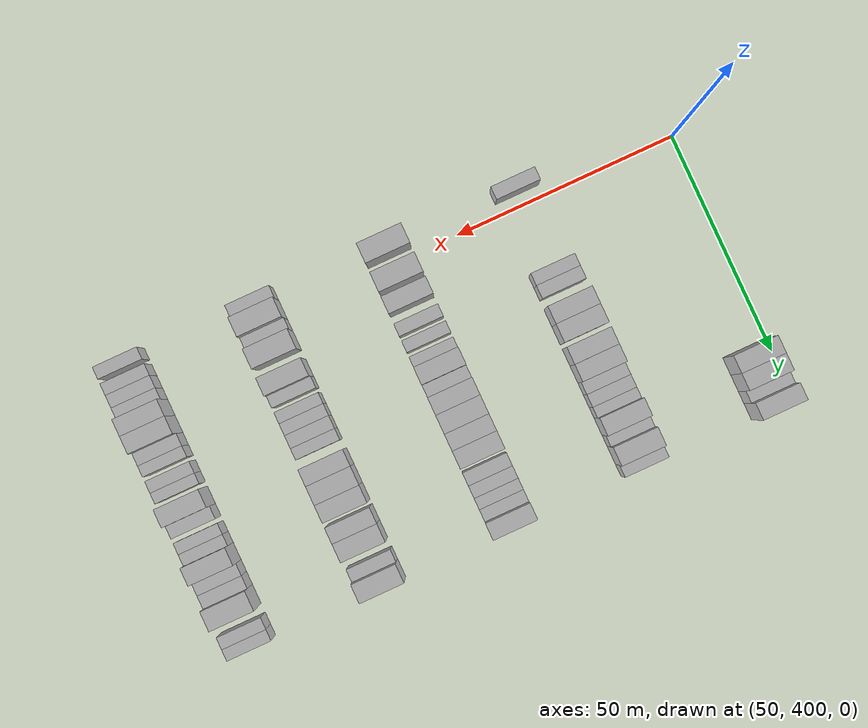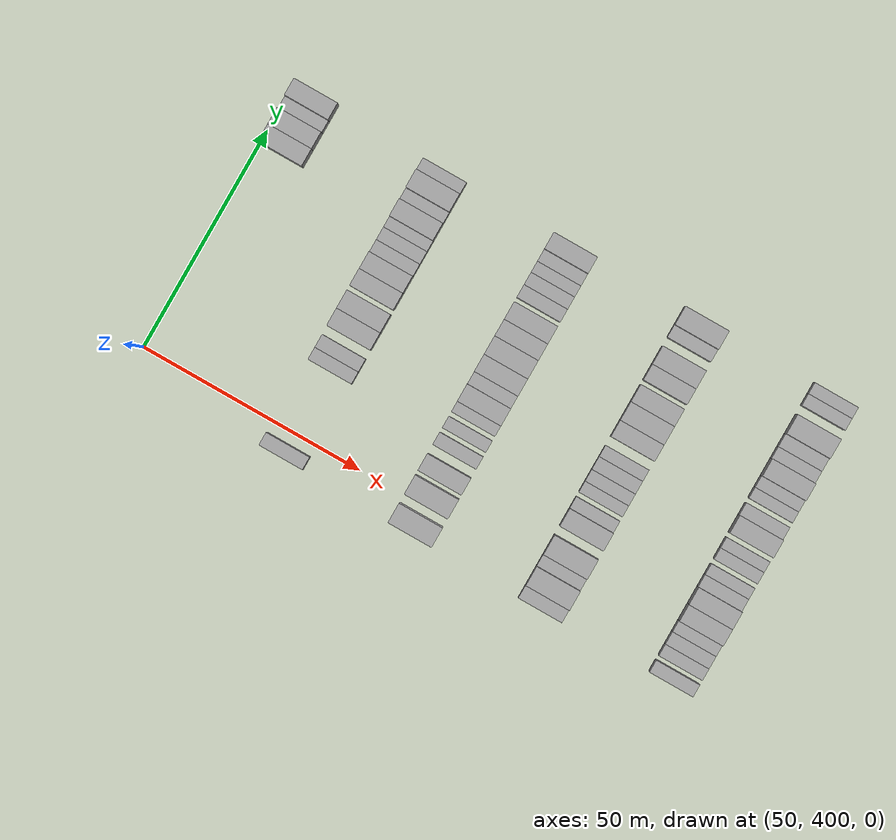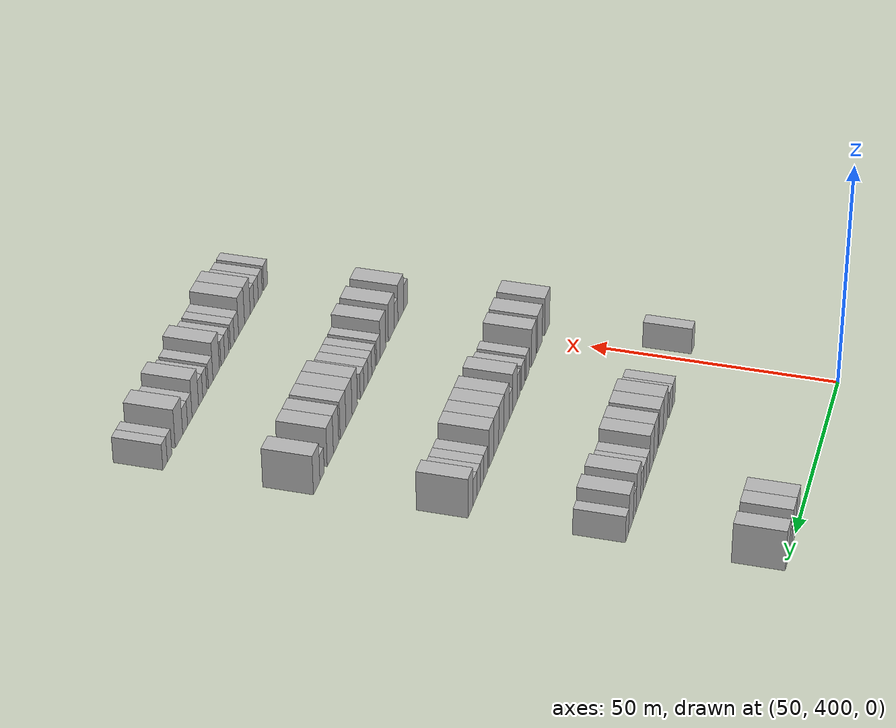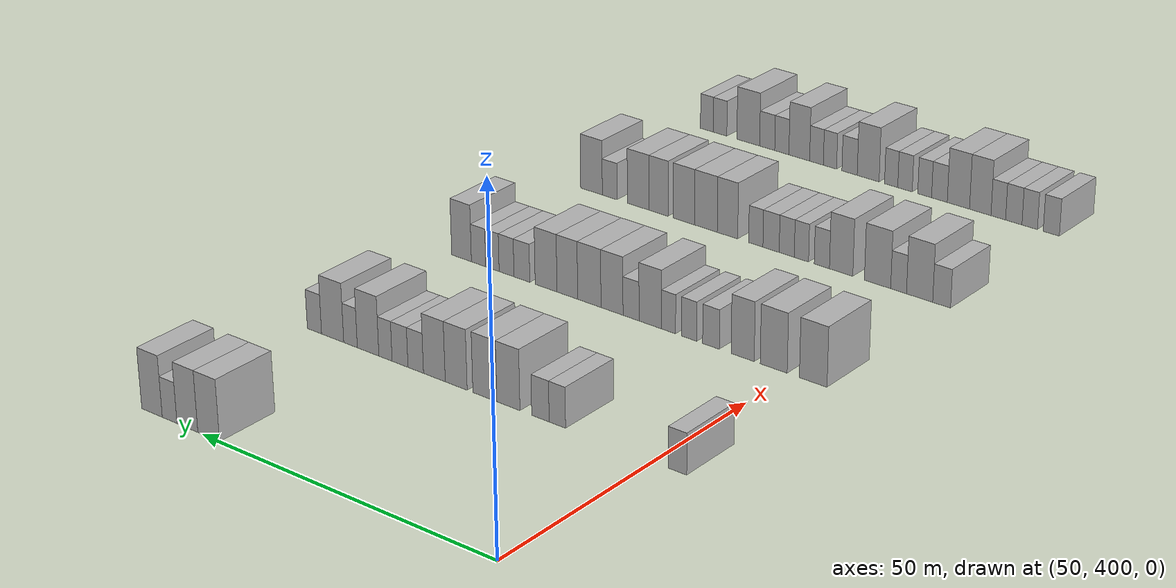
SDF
<sdf version="1.6">
 <world name="default">
  <model name="building_464">
   <static>1</static>
   <pose>55.0000 448.9267 0 0.000000 0.000000 0.000000</pose>
   <link name="link">
    <pose>0 0 4.50 0 0 0</pose>
    <collision name="collision"><geometry><box><size>10.0000 3.9750 9.0000</size></box></geometry></collision>
    <visual name="visual">
     <cast_shadows>0</cast_shadows>
     <geometry><box><size>10.0000 3.9750 9.0000</size></box></geometry>
     <material>
      <script>
       <uri>model://HANNAS_wall/materials/scripts</uri>
       <uri>model://HANNAS_wall/materials/textures</uri>
       <name>vrc/HANNAS_wall</name>
      </script>
     </material>
    </visual>
   </link>
  </model>
  <model name="building_465">
   <static>1</static>
   <pose>55.0000 452.8428 0 0.000000 0.000000 0.000000</pose>
   <link name="link">
    <pose>0 0 4.50 0 0 0</pose>
    <collision name="collision"><geometry><box><size>10.0000 3.8572 9.0000</size></box></geometry></collision>
    <visual name="visual">
     <cast_shadows>0</cast_shadows>
     <geometry><box><size>10.0000 3.8572 9.0000</size></box></geometry>
     <material>
      <script>
       <uri>model://HANNAS_wall/materials/scripts</uri>
       <uri>model://HANNAS_wall/materials/textures</uri>
       <name>vrc/HANNAS_wall</name>
      </script>
     </material>
    </visual>
   </link>
  </model>
  <model name="building_466">
   <static>1</static>
   <pose>55.0000 456.1457 0 0.000000 0.000000 0.000000</pose>
   <link name="link">
    <pose>0 0 3.00 0 0 0</pose>
    <collision name="collision"><geometry><box><size>10.0000 2.7486 6.0000</size></box></geometry></collision>
    <visual name="visual">
     <cast_shadows>0</cast_shadows>
     <geometry><box><size>10.0000 2.7486 6.0000</size></box></geometry>
     <material>
      <script>
       <uri>model://HANNAS_wall/materials/scripts</uri>
       <uri>model://HANNAS_wall/materials/textures</uri>
       <name>vrc/HANNAS_wall</name>
      </script>
     </material>
    </visual>
   </link>
  </model>
  <model name="building_467">
   <static>1</static>
   <pose>55.0000 459.4512 0 0.000000 0.000000 0.000000</pose>
   <link name="link">
    <pose>0 0 4.50 0 0 0</pose>
    <collision name="collision"><geometry><box><size>10.0000 3.8623 9.0000</size></box></geometry></collision>
    <visual name="visual">
     <cast_shadows>0</cast_shadows>
     <geometry><box><size>10.0000 3.8623 9.0000</size></box></geometry>
     <material>
      <script>
       <uri>model://HANNAS_wall/materials/scripts</uri>
       <uri>model://HANNAS_wall/materials/textures</uri>
       <name>vrc/HANNAS_wall</name>
      </script>
     </material>
    </visual>
   </link>
  </model>
  <model name="building_663">
   <static>1</static>
   <pose>85.0000 396.0462 0 0.000000 0.000000 0.000000</pose>
   <link name="link">
    <pose>0 0 3.00 0 0 0</pose>
    <collision name="collision"><geometry><box><size>10.0000 2.9121 6.0000</size></box></geometry></collision>
    <visual name="visual">
     <cast_shadows>0</cast_shadows>
     <geometry><box><size>10.0000 2.9121 6.0000</size></box></geometry>
     <material>
      <script>
       <uri>model://HANNAS_wall/materials/scripts</uri>
       <uri>model://HANNAS_wall/materials/textures</uri>
       <name>vrc/HANNAS_wall</name>
      </script>
     </material>
    </visual>
   </link>
  </model>
  <model name="building_664">
   <static>1</static>
   <pose>85.0000 415.6444 0 0.000000 0.000000 0.000000</pose>
   <link name="link">
    <pose>0 0 3.00 0 0 0</pose>
    <collision name="collision"><geometry><box><size>10.0000 2.7614 6.0000</size></box></geometry></collision>
    <visual name="visual">
     <cast_shadows>0</cast_shadows>
     <geometry><box><size>10.0000 2.7614 6.0000</size></box></geometry>
     <material>
      <script>
       <uri>model://HANNAS_wall/materials/scripts</uri>
       <uri>model://HANNAS_wall/materials/textures</uri>
       <name>vrc/HANNAS_wall</name>
      </script>
     </material>
    </visual>
   </link>
  </model>
  <model name="building_665">
   <static>1</static>
   <pose>85.0000 418.5051 0 0.000000 0.000000 0.000000</pose>
   <link name="link">
    <pose>0 0 3.00 0 0 0</pose>
    <collision name="collision"><geometry><box><size>10.0000 2.9600 6.0000</size></box></geometry></collision>
    <visual name="visual">
     <cast_shadows>0</cast_shadows>
     <geometry><box><size>10.0000 2.9600 6.0000</size></box></geometry>
     <material>
      <script>
       <uri>model://HANNAS_wall/materials/scripts</uri>
       <uri>model://HANNAS_wall/materials/textures</uri>
       <name>vrc/HANNAS_wall</name>
      </script>
     </material>
    </visual>
   </link>
  </model>
  <model name="building_666">
   <static>1</static>
   <pose>85.0000 423.9776 0 0.000000 0.000000 0.000000</pose>
   <link name="link">
    <pose>0 0 4.50 0 0 0</pose>
    <collision name="collision"><geometry><box><size>10.0000 3.9851 9.0000</size></box></geometry></collision>
    <visual name="visual">
     <cast_shadows>0</cast_shadows>
     <geometry><box><size>10.0000 3.9851 9.0000</size></box></geometry>
     <material>
      <script>
       <uri>model://HANNAS_wall/materials/scripts</uri>
       <uri>model://HANNAS_wall/materials/textures</uri>
       <name>vrc/HANNAS_wall</name>
      </script>
     </material>
    </visual>
   </link>
  </model>
  <model name="building_667">
   <static>1</static>
   <pose>85.0000 428.0587 0 0.000000 0.000000 0.000000</pose>
   <link name="link">
    <pose>0 0 4.50 0 0 0</pose>
    <collision name="collision"><geometry><box><size>10.0000 4.1770 9.0000</size></box></geometry></collision>
    <visual name="visual">
     <cast_shadows>0</cast_shadows>
     <geometry><box><size>10.0000 4.1770 9.0000</size></box></geometry>
     <material>
      <script>
       <uri>model://HANNAS_wall/materials/scripts</uri>
       <uri>model://HANNAS_wall/materials/textures</uri>
       <name>vrc/HANNAS_wall</name>
      </script>
     </material>
    </visual>
   </link>
  </model>
  <model name="building_668">
   <static>1</static>
   <pose>85.0000 433.0888 0 0.000000 0.000000 0.000000</pose>
   <link name="link">
    <pose>0 0 4.50 0 0 0</pose>
    <collision name="collision"><geometry><box><size>10.0000 3.8833 9.0000</size></box></geometry></collision>
    <visual name="visual">
     <cast_shadows>0</cast_shadows>
     <geometry><box><size>10.0000 3.8833 9.0000</size></box></geometry>
     <material>
      <script>
       <uri>model://HANNAS_wall/materials/scripts</uri>
       <uri>model://HANNAS_wall/materials/textures</uri>
       <name>vrc/HANNAS_wall</name>
      </script>
     </material>
    </visual>
   </link>
  </model>
  <model name="building_669">
   <static>1</static>
   <pose>85.0000 436.9780 0 0.000000 0.000000 0.000000</pose>
   <link name="link">
    <pose>0 0 4.50 0 0 0</pose>
    <collision name="collision"><geometry><box><size>10.0000 3.8949 9.0000</size></box></geometry></collision>
    <visual name="visual">
     <cast_shadows>0</cast_shadows>
     <geometry><box><size>10.0000 3.8949 9.0000</size></box></geometry>
     <material>
      <script>
       <uri>model://HANNAS_wall/materials/scripts</uri>
       <uri>model://HANNAS_wall/materials/textures</uri>
       <name>vrc/HANNAS_wall</name>
      </script>
     </material>
    </visual>
   </link>
  </model>
  <model name="building_670">
   <static>1</static>
   <pose>85.0000 440.3290 0 0.000000 0.000000 0.000000</pose>
   <link name="link">
    <pose>0 0 3.00 0 0 0</pose>
    <collision name="collision"><geometry><box><size>10.0000 2.8072 6.0000</size></box></geometry></collision>
    <visual name="visual">
     <cast_shadows>0</cast_shadows>
     <geometry><box><size>10.0000 2.8072 6.0000</size></box></geometry>
     <material>
      <script>
       <uri>model://HANNAS_wall/materials/scripts</uri>
       <uri>model://HANNAS_wall/materials/textures</uri>
       <name>vrc/HANNAS_wall</name>
      </script>
     </material>
    </visual>
   </link>
  </model>
  <model name="building_671">
   <static>1</static>
   <pose>85.0000 443.1769 0 0.000000 0.000000 0.000000</pose>
   <link name="link">
    <pose>0 0 3.00 0 0 0</pose>
    <collision name="collision"><geometry><box><size>10.0000 2.8884 6.0000</size></box></geometry></collision>
    <visual name="visual">
     <cast_shadows>0</cast_shadows>
     <geometry><box><size>10.0000 2.8884 6.0000</size></box></geometry>
     <material>
      <script>
       <uri>model://HANNAS_wall/materials/scripts</uri>
       <uri>model://HANNAS_wall/materials/textures</uri>
       <name>vrc/HANNAS_wall</name>
      </script>
     </material>
    </visual>
   </link>
  </model>
  <model name="building_672">
   <static>1</static>
   <pose>85.0000 445.8371 0 0.000000 0.000000 0.000000</pose>
   <link name="link">
    <pose>0 0 3.00 0 0 0</pose>
    <collision name="collision"><geometry><box><size>10.0000 2.4321 6.0000</size></box></geometry></collision>
    <visual name="visual">
     <cast_shadows>0</cast_shadows>
     <geometry><box><size>10.0000 2.4321 6.0000</size></box></geometry>
     <material>
      <script>
       <uri>model://HANNAS_wall/materials/scripts</uri>
       <uri>model://HANNAS_wall/materials/textures</uri>
       <name>vrc/HANNAS_wall</name>
      </script>
     </material>
    </visual>
   </link>
  </model>
  <model name="building_673">
   <static>1</static>
   <pose>85.0000 449.0518 0 0.000000 0.000000 0.000000</pose>
   <link name="link">
    <pose>0 0 4.50 0 0 0</pose>
    <collision name="collision"><geometry><box><size>10.0000 3.9973 9.0000</size></box></geometry></collision>
    <visual name="visual">
     <cast_shadows>0</cast_shadows>
     <geometry><box><size>10.0000 3.9973 9.0000</size></box></geometry>
     <material>
      <script>
       <uri>model://HANNAS_wall/materials/scripts</uri>
       <uri>model://HANNAS_wall/materials/textures</uri>
       <name>vrc/HANNAS_wall</name>
      </script>
     </material>
    </visual>
   </link>
  </model>
  <model name="building_674">
   <static>1</static>
   <pose>85.0000 452.3210 0 0.000000 0.000000 0.000000</pose>
   <link name="link">
    <pose>0 0 3.00 0 0 0</pose>
    <collision name="collision"><geometry><box><size>10.0000 2.5412 6.0000</size></box></geometry></collision>
    <visual name="visual">
     <cast_shadows>0</cast_shadows>
     <geometry><box><size>10.0000 2.5412 6.0000</size></box></geometry>
     <material>
      <script>
       <uri>model://HANNAS_wall/materials/scripts</uri>
       <uri>model://HANNAS_wall/materials/textures</uri>
       <name>vrc/HANNAS_wall</name>
      </script>
     </material>
    </visual>
   </link>
  </model>
  <model name="building_675">
   <static>1</static>
   <pose>85.0000 455.6850 0 0.000000 0.000000 0.000000</pose>
   <link name="link">
    <pose>0 0 4.50 0 0 0</pose>
    <collision name="collision"><geometry><box><size>10.0000 4.1868 9.0000</size></box></geometry></collision>
    <visual name="visual">
     <cast_shadows>0</cast_shadows>
     <geometry><box><size>10.0000 4.1868 9.0000</size></box></geometry>
     <material>
      <script>
       <uri>model://HANNAS_wall/materials/scripts</uri>
       <uri>model://HANNAS_wall/materials/textures</uri>
       <name>vrc/HANNAS_wall</name>
      </script>
     </material>
    </visual>
   </link>
  </model>
  <model name="building_676">
   <static>1</static>
   <pose>85.0000 459.1339 0 0.000000 0.000000 0.000000</pose>
   <link name="link">
    <pose>0 0 3.00 0 0 0</pose>
    <collision name="collision"><geometry><box><size>10.0000 2.7111 6.0000</size></box></geometry></collision>
    <visual name="visual">
     <cast_shadows>0</cast_shadows>
     <geometry><box><size>10.0000 2.7111 6.0000</size></box></geometry>
     <material>
      <script>
       <uri>model://HANNAS_wall/materials/scripts</uri>
       <uri>model://HANNAS_wall/materials/textures</uri>
       <name>vrc/HANNAS_wall</name>
      </script>
     </material>
    </visual>
   </link>
  </model>
  <model name="building_891">
   <static>1</static>
   <pose>115.0000 396.2798 0 0.000000 0.000000 0.000000</pose>
   <link name="link">
    <pose>0 0 4.50 0 0 0</pose>
    <collision name="collision"><geometry><box><size>10.0000 4.4932 9.0000</size></box></geometry></collision>
    <visual name="visual">
     <cast_shadows>0</cast_shadows>
     <geometry><box><size>10.0000 4.4932 9.0000</size></box></geometry>
     <material>
      <script>
       <uri>model://HANNAS_wall/materials/scripts</uri>
       <uri>model://HANNAS_wall/materials/textures</uri>
       <name>vrc/HANNAS_wall</name>
      </script>
     </material>
    </visual>
   </link>
  </model>
  <model name="building_892">
   <static>1</static>
   <pose>115.0000 402.7582 0 0.000000 0.000000 0.000000</pose>
   <link name="link">
    <pose>0 0 4.50 0 0 0</pose>
    <collision name="collision"><geometry><box><size>10.0000 4.4637 9.0000</size></box></geometry></collision>
    <visual name="visual">
     <cast_shadows>0</cast_shadows>
     <geometry><box><size>10.0000 4.4637 9.0000</size></box></geometry>
     <material>
      <script>
       <uri>model://HANNAS_wall/materials/scripts</uri>
       <uri>model://HANNAS_wall/materials/textures</uri>
       <name>vrc/HANNAS_wall</name>
      </script>
     </material>
    </visual>
   </link>
  </model>
  <model name="building_893">
   <static>1</static>
   <pose>115.0000 407.9287 0 0.000000 0.000000 0.000000</pose>
   <link name="link">
    <pose>0 0 4.50 0 0 0</pose>
    <collision name="collision"><geometry><box><size>10.0000 3.8773 9.0000</size></box></geometry></collision>
    <visual name="visual">
     <cast_shadows>0</cast_shadows>
     <geometry><box><size>10.0000 3.8773 9.0000</size></box></geometry>
     <material>
      <script>
       <uri>model://HANNAS_wall/materials/scripts</uri>
       <uri>model://HANNAS_wall/materials/textures</uri>
       <name>vrc/HANNAS_wall</name>
      </script>
     </material>
    </visual>
   </link>
  </model>
  <model name="building_894">
   <static>1</static>
   <pose>115.0000 413.2914 0 0.000000 0.000000 0.000000</pose>
   <link name="link">
    <pose>0 0 3.00 0 0 0</pose>
    <collision name="collision"><geometry><box><size>10.0000 2.8482 6.0000</size></box></geometry></collision>
    <visual name="visual">
     <cast_shadows>0</cast_shadows>
     <geometry><box><size>10.0000 2.8482 6.0000</size></box></geometry>
     <material>
      <script>
       <uri>model://HANNAS_wall/materials/scripts</uri>
       <uri>model://HANNAS_wall/materials/textures</uri>
       <name>vrc/HANNAS_wall</name>
      </script>
     </material>
    </visual>
   </link>
  </model>
  <model name="building_895">
   <static>1</static>
   <pose>115.0000 417.0462 0 0.000000 0.000000 0.000000</pose>
   <link name="link">
    <pose>0 0 3.00 0 0 0</pose>
    <collision name="collision"><geometry><box><size>10.0000 2.6614 6.0000</size></box></geometry></collision>
    <visual name="visual">
     <cast_shadows>0</cast_shadows>
     <geometry><box><size>10.0000 2.6614 6.0000</size></box></geometry>
     <material>
      <script>
       <uri>model://HANNAS_wall/materials/scripts</uri>
       <uri>model://HANNAS_wall/materials/textures</uri>
       <name>vrc/HANNAS_wall</name>
      </script>
     </material>
    </visual>
   </link>
  </model>
  <model name="building_896">
   <static>1</static>
   <pose>115.0000 420.5962 0 0.000000 0.000000 0.000000</pose>
   <link name="link">
    <pose>0 0 3.00 0 0 0</pose>
    <collision name="collision"><geometry><box><size>10.0000 2.4386 6.0000</size></box></geometry></collision>
    <visual name="visual">
     <cast_shadows>0</cast_shadows>
     <geometry><box><size>10.0000 2.4386 6.0000</size></box></geometry>
     <material>
      <script>
       <uri>model://HANNAS_wall/materials/scripts</uri>
       <uri>model://HANNAS_wall/materials/textures</uri>
       <name>vrc/HANNAS_wall</name>
      </script>
     </material>
    </visual>
   </link>
  </model>
  <model name="building_897">
   <static>1</static>
   <pose>115.0000 423.7992 0 0.000000 0.000000 0.000000</pose>
   <link name="link">
    <pose>0 0 4.50 0 0 0</pose>
    <collision name="collision"><geometry><box><size>10.0000 3.9674 9.0000</size></box></geometry></collision>
    <visual name="visual">
     <cast_shadows>0</cast_shadows>
     <geometry><box><size>10.0000 3.9674 9.0000</size></box></geometry>
     <material>
      <script>
       <uri>model://HANNAS_wall/materials/scripts</uri>
       <uri>model://HANNAS_wall/materials/textures</uri>
       <name>vrc/HANNAS_wall</name>
      </script>
     </material>
    </visual>
   </link>
  </model>
  <model name="building_898">
   <static>1</static>
   <pose>115.0000 427.1985 0 0.000000 0.000000 0.000000</pose>
   <link name="link">
    <pose>0 0 3.00 0 0 0</pose>
    <collision name="collision"><geometry><box><size>10.0000 2.8313 6.0000</size></box></geometry></collision>
    <visual name="visual">
     <cast_shadows>0</cast_shadows>
     <geometry><box><size>10.0000 2.8313 6.0000</size></box></geometry>
     <material>
      <script>
       <uri>model://HANNAS_wall/materials/scripts</uri>
       <uri>model://HANNAS_wall/materials/textures</uri>
       <name>vrc/HANNAS_wall</name>
      </script>
     </material>
    </visual>
   </link>
  </model>
  <model name="building_899">
   <static>1</static>
   <pose>115.0000 430.5866 0 0.000000 0.000000 0.000000</pose>
   <link name="link">
    <pose>0 0 4.50 0 0 0</pose>
    <collision name="collision"><geometry><box><size>10.0000 3.9449 9.0000</size></box></geometry></collision>
    <visual name="visual">
     <cast_shadows>0</cast_shadows>
     <geometry><box><size>10.0000 3.9449 9.0000</size></box></geometry>
     <material>
      <script>
       <uri>model://HANNAS_wall/materials/scripts</uri>
       <uri>model://HANNAS_wall/materials/textures</uri>
       <name>vrc/HANNAS_wall</name>
      </script>
     </material>
    </visual>
   </link>
  </model>
  <model name="building_900">
   <static>1</static>
   <pose>115.0000 434.6701 0 0.000000 0.000000 0.000000</pose>
   <link name="link">
    <pose>0 0 4.50 0 0 0</pose>
    <collision name="collision"><geometry><box><size>10.0000 4.2222 9.0000</size></box></geometry></collision>
    <visual name="visual">
     <cast_shadows>0</cast_shadows>
     <geometry><box><size>10.0000 4.2222 9.0000</size></box></geometry>
     <material>
      <script>
       <uri>model://HANNAS_wall/materials/scripts</uri>
       <uri>model://HANNAS_wall/materials/textures</uri>
       <name>vrc/HANNAS_wall</name>
      </script>
     </material>
    </visual>
   </link>
  </model>
  <model name="building_901">
   <static>1</static>
   <pose>115.0000 438.6749 0 0.000000 0.000000 0.000000</pose>
   <link name="link">
    <pose>0 0 4.50 0 0 0</pose>
    <collision name="collision"><geometry><box><size>10.0000 3.7874 9.0000</size></box></geometry></collision>
    <visual name="visual">
     <cast_shadows>0</cast_shadows>
     <geometry><box><size>10.0000 3.7874 9.0000</size></box></geometry>
     <material>
      <script>
       <uri>model://HANNAS_wall/materials/scripts</uri>
       <uri>model://HANNAS_wall/materials/textures</uri>
       <name>vrc/HANNAS_wall</name>
      </script>
     </material>
    </visual>
   </link>
  </model>
  <model name="building_902">
   <static>1</static>
   <pose>115.0000 442.5898 0 0.000000 0.000000 0.000000</pose>
   <link name="link">
    <pose>0 0 4.50 0 0 0</pose>
    <collision name="collision"><geometry><box><size>10.0000 4.0423 9.0000</size></box></geometry></collision>
    <visual name="visual">
     <cast_shadows>0</cast_shadows>
     <geometry><box><size>10.0000 4.0423 9.0000</size></box></geometry>
     <material>
      <script>
       <uri>model://HANNAS_wall/materials/scripts</uri>
       <uri>model://HANNAS_wall/materials/textures</uri>
       <name>vrc/HANNAS_wall</name>
      </script>
     </material>
    </visual>
   </link>
  </model>
  <model name="building_903">
   <static>1</static>
   <pose>115.0000 447.0925 0 0.000000 0.000000 0.000000</pose>
   <link name="link">
    <pose>0 0 3.00 0 0 0</pose>
    <collision name="collision"><geometry><box><size>10.0000 2.9630 6.0000</size></box></geometry></collision>
    <visual name="visual">
     <cast_shadows>0</cast_shadows>
     <geometry><box><size>10.0000 2.9630 6.0000</size></box></geometry>
     <material>
      <script>
       <uri>model://HANNAS_wall/materials/scripts</uri>
       <uri>model://HANNAS_wall/materials/textures</uri>
       <name>vrc/HANNAS_wall</name>
      </script>
     </material>
    </visual>
   </link>
  </model>
  <model name="building_904">
   <static>1</static>
   <pose>115.0000 449.9785 0 0.000000 0.000000 0.000000</pose>
   <link name="link">
    <pose>0 0 3.00 0 0 0</pose>
    <collision name="collision"><geometry><box><size>10.0000 2.8090 6.0000</size></box></geometry></collision>
    <visual name="visual">
     <cast_shadows>0</cast_shadows>
     <geometry><box><size>10.0000 2.8090 6.0000</size></box></geometry>
     <material>
      <script>
       <uri>model://HANNAS_wall/materials/scripts</uri>
       <uri>model://HANNAS_wall/materials/textures</uri>
       <name>vrc/HANNAS_wall</name>
      </script>
     </material>
    </visual>
   </link>
  </model>
  <model name="building_905">
   <static>1</static>
   <pose>115.0000 452.6579 0 0.000000 0.000000 0.000000</pose>
   <link name="link">
    <pose>0 0 3.00 0 0 0</pose>
    <collision name="collision"><geometry><box><size>10.0000 2.5497 6.0000</size></box></geometry></collision>
    <visual name="visual">
     <cast_shadows>0</cast_shadows>
     <geometry><box><size>10.0000 2.5497 6.0000</size></box></geometry>
     <material>
      <script>
       <uri>model://HANNAS_wall/materials/scripts</uri>
       <uri>model://HANNAS_wall/materials/textures</uri>
       <name>vrc/HANNAS_wall</name>
      </script>
     </material>
    </visual>
   </link>
  </model>
  <model name="building_906">
   <static>1</static>
   <pose>115.0000 455.3035 0 0.000000 0.000000 0.000000</pose>
   <link name="link">
    <pose>0 0 3.00 0 0 0</pose>
    <collision name="collision"><geometry><box><size>10.0000 2.7417 6.0000</size></box></geometry></collision>
    <visual name="visual">
     <cast_shadows>0</cast_shadows>
     <geometry><box><size>10.0000 2.7417 6.0000</size></box></geometry>
     <material>
      <script>
       <uri>model://HANNAS_wall/materials/scripts</uri>
       <uri>model://HANNAS_wall/materials/textures</uri>
       <name>vrc/HANNAS_wall</name>
      </script>
     </material>
    </visual>
   </link>
  </model>
  <model name="building_907">
   <static>1</static>
   <pose>115.0000 458.5735 0 0.000000 0.000000 0.000000</pose>
   <link name="link">
    <pose>0 0 4.50 0 0 0</pose>
    <collision name="collision"><geometry><box><size>10.0000 3.7983 9.0000</size></box></geometry></collision>
    <visual name="visual">
     <cast_shadows>0</cast_shadows>
     <geometry><box><size>10.0000 3.7983 9.0000</size></box></geometry>
     <material>
      <script>
       <uri>model://HANNAS_wall/materials/scripts</uri>
       <uri>model://HANNAS_wall/materials/textures</uri>
       <name>vrc/HANNAS_wall</name>
      </script>
     </material>
    </visual>
   </link>
  </model>
  <model name="building_1117">
   <static>1</static>
   <pose>145.0000 395.2943 0 0.000000 0.000000 0.000000</pose>
   <link name="link">
    <pose>0 0 3.00 0 0 0</pose>
    <collision name="collision"><geometry><box><size>10.0000 2.9698 6.0000</size></box></geometry></collision>
    <visual name="visual">
     <cast_shadows>0</cast_shadows>
     <geometry><box><size>10.0000 2.9698 6.0000</size></box></geometry>
     <material>
      <script>
       <uri>model://HANNAS_wall/materials/scripts</uri>
       <uri>model://HANNAS_wall/materials/textures</uri>
       <name>vrc/HANNAS_wall</name>
      </script>
     </material>
    </visual>
   </link>
  </model>
  <model name="building_1118">
   <static>1</static>
   <pose>145.0000 398.9820 0 0.000000 0.000000 0.000000</pose>
   <link name="link">
    <pose>0 0 4.50 0 0 0</pose>
    <collision name="collision"><geometry><box><size>10.0000 4.4057 9.0000</size></box></geometry></collision>
    <visual name="visual">
     <cast_shadows>0</cast_shadows>
     <geometry><box><size>10.0000 4.4057 9.0000</size></box></geometry>
     <material>
      <script>
       <uri>model://HANNAS_wall/materials/scripts</uri>
       <uri>model://HANNAS_wall/materials/textures</uri>
       <name>vrc/HANNAS_wall</name>
      </script>
     </material>
    </visual>
   </link>
  </model>
  <model name="building_1119">
   <static>1</static>
   <pose>145.0000 402.5238 0 0.000000 0.000000 0.000000</pose>
   <link name="link">
    <pose>0 0 3.00 0 0 0</pose>
    <collision name="collision"><geometry><box><size>10.0000 2.6779 6.0000</size></box></geometry></collision>
    <visual name="visual">
     <cast_shadows>0</cast_shadows>
     <geometry><box><size>10.0000 2.6779 6.0000</size></box></geometry>
     <material>
      <script>
       <uri>model://HANNAS_wall/materials/scripts</uri>
       <uri>model://HANNAS_wall/materials/textures</uri>
       <name>vrc/HANNAS_wall</name>
      </script>
     </material>
    </visual>
   </link>
  </model>
  <model name="building_1120">
   <static>1</static>
   <pose>145.0000 406.1125 0 0.000000 0.000000 0.000000</pose>
   <link name="link">
    <pose>0 0 4.50 0 0 0</pose>
    <collision name="collision"><geometry><box><size>10.0000 4.4994 9.0000</size></box></geometry></collision>
    <visual name="visual">
     <cast_shadows>0</cast_shadows>
     <geometry><box><size>10.0000 4.4994 9.0000</size></box></geometry>
     <material>
      <script>
       <uri>model://HANNAS_wall/materials/scripts</uri>
       <uri>model://HANNAS_wall/materials/textures</uri>
       <name>vrc/HANNAS_wall</name>
      </script>
     </material>
    </visual>
   </link>
  </model>
  <model name="building_1121">
   <static>1</static>
   <pose>145.0000 412.3999 0 0.000000 0.000000 0.000000</pose>
   <link name="link">
    <pose>0 0 4.50 0 0 0</pose>
    <collision name="collision"><geometry><box><size>10.0000 4.0754 9.0000</size></box></geometry></collision>
    <visual name="visual">
     <cast_shadows>0</cast_shadows>
     <geometry><box><size>10.0000 4.0754 9.0000</size></box></geometry>
     <material>
      <script>
       <uri>model://HANNAS_wall/materials/scripts</uri>
       <uri>model://HANNAS_wall/materials/textures</uri>
       <name>vrc/HANNAS_wall</name>
      </script>
     </material>
    </visual>
   </link>
  </model>
  <model name="building_1122">
   <static>1</static>
   <pose>145.0000 415.7725 0 0.000000 0.000000 0.000000</pose>
   <link name="link">
    <pose>0 0 3.00 0 0 0</pose>
    <collision name="collision"><geometry><box><size>10.0000 2.6699 6.0000</size></box></geometry></collision>
    <visual name="visual">
     <cast_shadows>0</cast_shadows>
     <geometry><box><size>10.0000 2.6699 6.0000</size></box></geometry>
     <material>
      <script>
       <uri>model://HANNAS_wall/materials/scripts</uri>
       <uri>model://HANNAS_wall/materials/textures</uri>
       <name>vrc/HANNAS_wall</name>
      </script>
     </material>
    </visual>
   </link>
  </model>
  <model name="building_1123">
   <static>1</static>
   <pose>145.0000 419.3761 0 0.000000 0.000000 0.000000</pose>
   <link name="link">
    <pose>0 0 3.00 0 0 0</pose>
    <collision name="collision"><geometry><box><size>10.0000 2.5372 6.0000</size></box></geometry></collision>
    <visual name="visual">
     <cast_shadows>0</cast_shadows>
     <geometry><box><size>10.0000 2.5372 6.0000</size></box></geometry>
     <material>
      <script>
       <uri>model://HANNAS_wall/materials/scripts</uri>
       <uri>model://HANNAS_wall/materials/textures</uri>
       <name>vrc/HANNAS_wall</name>
      </script>
     </material>
    </visual>
   </link>
  </model>
  <model name="building_1124">
   <static>1</static>
   <pose>145.0000 421.9921 0 0.000000 0.000000 0.000000</pose>
   <link name="link">
    <pose>0 0 3.00 0 0 0</pose>
    <collision name="collision"><geometry><box><size>10.0000 2.6948 6.0000</size></box></geometry></collision>
    <visual name="visual">
     <cast_shadows>0</cast_shadows>
     <geometry><box><size>10.0000 2.6948 6.0000</size></box></geometry>
     <material>
      <script>
       <uri>model://HANNAS_wall/materials/scripts</uri>
       <uri>model://HANNAS_wall/materials/textures</uri>
       <name>vrc/HANNAS_wall</name>
      </script>
     </material>
    </visual>
   </link>
  </model>
  <model name="building_1125">
   <static>1</static>
   <pose>145.0000 424.8065 0 0.000000 0.000000 0.000000</pose>
   <link name="link">
    <pose>0 0 3.00 0 0 0</pose>
    <collision name="collision"><geometry><box><size>10.0000 2.9340 6.0000</size></box></geometry></collision>
    <visual name="visual">
     <cast_shadows>0</cast_shadows>
     <geometry><box><size>10.0000 2.9340 6.0000</size></box></geometry>
     <material>
      <script>
       <uri>model://HANNAS_wall/materials/scripts</uri>
       <uri>model://HANNAS_wall/materials/textures</uri>
       <name>vrc/HANNAS_wall</name>
      </script>
     </material>
    </visual>
   </link>
  </model>
  <model name="building_1126">
   <static>1</static>
   <pose>145.0000 427.5677 0 0.000000 0.000000 0.000000</pose>
   <link name="link">
    <pose>0 0 3.00 0 0 0</pose>
    <collision name="collision"><geometry><box><size>10.0000 2.5884 6.0000</size></box></geometry></collision>
    <visual name="visual">
     <cast_shadows>0</cast_shadows>
     <geometry><box><size>10.0000 2.5884 6.0000</size></box></geometry>
     <material>
      <script>
       <uri>model://HANNAS_wall/materials/scripts</uri>
       <uri>model://HANNAS_wall/materials/textures</uri>
       <name>vrc/HANNAS_wall</name>
      </script>
     </material>
    </visual>
   </link>
  </model>
  <model name="building_1127">
   <static>1</static>
   <pose>145.0000 432.7432 0 0.000000 0.000000 0.000000</pose>
   <link name="link">
    <pose>0 0 4.50 0 0 0</pose>
    <collision name="collision"><geometry><box><size>10.0000 3.7625 9.0000</size></box></geometry></collision>
    <visual name="visual">
     <cast_shadows>0</cast_shadows>
     <geometry><box><size>10.0000 3.7625 9.0000</size></box></geometry>
     <material>
      <script>
       <uri>model://HANNAS_wall/materials/scripts</uri>
       <uri>model://HANNAS_wall/materials/textures</uri>
       <name>vrc/HANNAS_wall</name>
      </script>
     </material>
    </visual>
   </link>
  </model>
  <model name="building_1128">
   <static>1</static>
   <pose>145.0000 436.7413 0 0.000000 0.000000 0.000000</pose>
   <link name="link">
    <pose>0 0 4.50 0 0 0</pose>
    <collision name="collision"><geometry><box><size>10.0000 4.2338 9.0000</size></box></geometry></collision>
    <visual name="visual">
     <cast_shadows>0</cast_shadows>
     <geometry><box><size>10.0000 4.2338 9.0000</size></box></geometry>
     <material>
      <script>
       <uri>model://HANNAS_wall/materials/scripts</uri>
       <uri>model://HANNAS_wall/materials/textures</uri>
       <name>vrc/HANNAS_wall</name>
      </script>
     </material>
    </visual>
   </link>
  </model>
  <model name="building_1129">
   <static>1</static>
   <pose>145.0000 440.8427 0 0.000000 0.000000 0.000000</pose>
   <link name="link">
    <pose>0 0 4.50 0 0 0</pose>
    <collision name="collision"><geometry><box><size>10.0000 3.9689 9.0000</size></box></geometry></collision>
    <visual name="visual">
     <cast_shadows>0</cast_shadows>
     <geometry><box><size>10.0000 3.9689 9.0000</size></box></geometry>
     <material>
      <script>
       <uri>model://HANNAS_wall/materials/scripts</uri>
       <uri>model://HANNAS_wall/materials/textures</uri>
       <name>vrc/HANNAS_wall</name>
      </script>
     </material>
    </visual>
   </link>
  </model>
  <model name="building_1130">
   <static>1</static>
   <pose>145.0000 445.6446 0 0.000000 0.000000 0.000000</pose>
   <link name="link">
    <pose>0 0 4.50 0 0 0</pose>
    <collision name="collision"><geometry><box><size>10.0000 3.6349 9.0000</size></box></geometry></collision>
    <visual name="visual">
     <cast_shadows>0</cast_shadows>
     <geometry><box><size>10.0000 3.6349 9.0000</size></box></geometry>
     <material>
      <script>
       <uri>model://HANNAS_wall/materials/scripts</uri>
       <uri>model://HANNAS_wall/materials/textures</uri>
       <name>vrc/HANNAS_wall</name>
      </script>
     </material>
    </visual>
   </link>
  </model>
  <model name="building_1131">
   <static>1</static>
   <pose>145.0000 449.5389 0 0.000000 0.000000 0.000000</pose>
   <link name="link">
    <pose>0 0 4.50 0 0 0</pose>
    <collision name="collision"><geometry><box><size>10.0000 4.1537 9.0000</size></box></geometry></collision>
    <visual name="visual">
     <cast_shadows>0</cast_shadows>
     <geometry><box><size>10.0000 4.1537 9.0000</size></box></geometry>
     <material>
      <script>
       <uri>model://HANNAS_wall/materials/scripts</uri>
       <uri>model://HANNAS_wall/materials/textures</uri>
       <name>vrc/HANNAS_wall</name>
      </script>
     </material>
    </visual>
   </link>
  </model>
  <model name="building_1132">
   <static>1</static>
   <pose>145.0000 455.0439 0 0.000000 0.000000 0.000000</pose>
   <link name="link">
    <pose>0 0 3.00 0 0 0</pose>
    <collision name="collision"><geometry><box><size>10.0000 2.8564 6.0000</size></box></geometry></collision>
    <visual name="visual">
     <cast_shadows>0</cast_shadows>
     <geometry><box><size>10.0000 2.8564 6.0000</size></box></geometry>
     <material>
      <script>
       <uri>model://HANNAS_wall/materials/scripts</uri>
       <uri>model://HANNAS_wall/materials/textures</uri>
       <name>vrc/HANNAS_wall</name>
      </script>
     </material>
    </visual>
   </link>
  </model>
  <model name="building_1133">
   <static>1</static>
   <pose>145.0000 458.5966 0 0.000000 0.000000 0.000000</pose>
   <link name="link">
    <pose>0 0 4.50 0 0 0</pose>
    <collision name="collision"><geometry><box><size>10.0000 4.2491 9.0000</size></box></geometry></collision>
    <visual name="visual">
     <cast_shadows>0</cast_shadows>
     <geometry><box><size>10.0000 4.2491 9.0000</size></box></geometry>
     <material>
      <script>
       <uri>model://HANNAS_wall/materials/scripts</uri>
       <uri>model://HANNAS_wall/materials/textures</uri>
       <name>vrc/HANNAS_wall</name>
      </script>
     </material>
    </visual>
   </link>
  </model>
  <model name="building_1350">
   <static>1</static>
   <pose>175.0000 395.3499 0 0.000000 0.000000 0.000000</pose>
   <link name="link">
    <pose>0 0 3.00 0 0 0</pose>
    <collision name="collision"><geometry><box><size>10.0000 2.7598 6.0000</size></box></geometry></collision>
    <visual name="visual">
     <cast_shadows>0</cast_shadows>
     <geometry><box><size>10.0000 2.7598 6.0000</size></box></geometry>
     <material>
      <script>
       <uri>model://HANNAS_wall/materials/scripts</uri>
       <uri>model://HANNAS_wall/materials/textures</uri>
       <name>vrc/HANNAS_wall</name>
      </script>
     </material>
    </visual>
   </link>
  </model>
  <model name="building_1351">
   <static>1</static>
   <pose>175.0000 399.0594 0 0.000000 0.000000 0.000000</pose>
   <link name="link">
    <pose>0 0 3.00 0 0 0</pose>
    <collision name="collision"><geometry><box><size>10.0000 2.6592 6.0000</size></box></geometry></collision>
    <visual name="visual">
     <cast_shadows>0</cast_shadows>
     <geometry><box><size>10.0000 2.6592 6.0000</size></box></geometry>
     <material>
      <script>
       <uri>model://HANNAS_wall/materials/scripts</uri>
       <uri>model://HANNAS_wall/materials/textures</uri>
       <name>vrc/HANNAS_wall</name>
      </script>
     </material>
    </visual>
   </link>
  </model>
  <model name="building_1352">
   <static>1</static>
   <pose>175.0000 401.8120 0 0.000000 0.000000 0.000000</pose>
   <link name="link">
    <pose>0 0 3.00 0 0 0</pose>
    <collision name="collision"><geometry><box><size>10.0000 2.8459 6.0000</size></box></geometry></collision>
    <visual name="visual">
     <cast_shadows>0</cast_shadows>
     <geometry><box><size>10.0000 2.8459 6.0000</size></box></geometry>
     <material>
      <script>
       <uri>model://HANNAS_wall/materials/scripts</uri>
       <uri>model://HANNAS_wall/materials/textures</uri>
       <name>vrc/HANNAS_wall</name>
      </script>
     </material>
    </visual>
   </link>
  </model>
  <model name="building_1353">
   <static>1</static>
   <pose>175.0000 404.5126 0 0.000000 0.000000 0.000000</pose>
   <link name="link">
    <pose>0 0 3.00 0 0 0</pose>
    <collision name="collision"><geometry><box><size>10.0000 2.5553 6.0000</size></box></geometry></collision>
    <visual name="visual">
     <cast_shadows>0</cast_shadows>
     <geometry><box><size>10.0000 2.5553 6.0000</size></box></geometry>
     <material>
      <script>
       <uri>model://HANNAS_wall/materials/scripts</uri>
       <uri>model://HANNAS_wall/materials/textures</uri>
       <name>vrc/HANNAS_wall</name>
      </script>
     </material>
    </visual>
   </link>
  </model>
  <model name="building_1354">
   <static>1</static>
   <pose>175.0000 407.6859 0 0.000000 0.000000 0.000000</pose>
   <link name="link">
    <pose>0 0 4.50 0 0 0</pose>
    <collision name="collision"><geometry><box><size>10.0000 3.7912 9.0000</size></box></geometry></collision>
    <visual name="visual">
     <cast_shadows>0</cast_shadows>
     <geometry><box><size>10.0000 3.7912 9.0000</size></box></geometry>
     <material>
      <script>
       <uri>model://HANNAS_wall/materials/scripts</uri>
       <uri>model://HANNAS_wall/materials/textures</uri>
       <name>vrc/HANNAS_wall</name>
      </script>
     </material>
    </visual>
   </link>
  </model>
  <model name="building_1355">
   <static>1</static>
   <pose>175.0000 411.5618 0 0.000000 0.000000 0.000000</pose>
   <link name="link">
    <pose>0 0 4.50 0 0 0</pose>
    <collision name="collision"><geometry><box><size>10.0000 3.9606 9.0000</size></box></geometry></collision>
    <visual name="visual">
     <cast_shadows>0</cast_shadows>
     <geometry><box><size>10.0000 3.9606 9.0000</size></box></geometry>
     <material>
      <script>
       <uri>model://HANNAS_wall/materials/scripts</uri>
       <uri>model://HANNAS_wall/materials/textures</uri>
       <name>vrc/HANNAS_wall</name>
      </script>
     </material>
    </visual>
   </link>
  </model>
  <model name="building_1356">
   <static>1</static>
   <pose>175.0000 414.9512 0 0.000000 0.000000 0.000000</pose>
   <link name="link">
    <pose>0 0 3.00 0 0 0</pose>
    <collision name="collision"><geometry><box><size>10.0000 2.8181 6.0000</size></box></geometry></collision>
    <visual name="visual">
     <cast_shadows>0</cast_shadows>
     <geometry><box><size>10.0000 2.8181 6.0000</size></box></geometry>
     <material>
      <script>
       <uri>model://HANNAS_wall/materials/scripts</uri>
       <uri>model://HANNAS_wall/materials/textures</uri>
       <name>vrc/HANNAS_wall</name>
      </script>
     </material>
    </visual>
   </link>
  </model>
  <model name="building_1357">
   <static>1</static>
   <pose>175.0000 417.6106 0 0.000000 0.000000 0.000000</pose>
   <link name="link">
    <pose>0 0 3.00 0 0 0</pose>
    <collision name="collision"><geometry><box><size>10.0000 2.5006 6.0000</size></box></geometry></collision>
    <visual name="visual">
     <cast_shadows>0</cast_shadows>
     <geometry><box><size>10.0000 2.5006 6.0000</size></box></geometry>
     <material>
      <script>
       <uri>model://HANNAS_wall/materials/scripts</uri>
       <uri>model://HANNAS_wall/materials/textures</uri>
       <name>vrc/HANNAS_wall</name>
      </script>
     </material>
    </visual>
   </link>
  </model>
  <model name="building_1358">
   <static>1</static>
   <pose>175.0000 421.1850 0 0.000000 0.000000 0.000000</pose>
   <link name="link">
    <pose>0 0 3.00 0 0 0</pose>
    <collision name="collision"><geometry><box><size>10.0000 2.6481 6.0000</size></box></geometry></collision>
    <visual name="visual">
     <cast_shadows>0</cast_shadows>
     <geometry><box><size>10.0000 2.6481 6.0000</size></box></geometry>
     <material>
      <script>
       <uri>model://HANNAS_wall/materials/scripts</uri>
       <uri>model://HANNAS_wall/materials/textures</uri>
       <name>vrc/HANNAS_wall</name>
      </script>
     </material>
    </visual>
   </link>
  </model>
  <model name="building_1359">
   <static>1</static>
   <pose>175.0000 423.7235 0 0.000000 0.000000 0.000000</pose>
   <link name="link">
    <pose>0 0 3.00 0 0 0</pose>
    <collision name="collision"><geometry><box><size>10.0000 2.4289 6.0000</size></box></geometry></collision>
    <visual name="visual">
     <cast_shadows>0</cast_shadows>
     <geometry><box><size>10.0000 2.4289 6.0000</size></box></geometry>
     <material>
      <script>
       <uri>model://HANNAS_wall/materials/scripts</uri>
       <uri>model://HANNAS_wall/materials/textures</uri>
       <name>vrc/HANNAS_wall</name>
      </script>
     </material>
    </visual>
   </link>
  </model>
  <model name="building_1360">
   <static>1</static>
   <pose>175.0000 427.9736 0 0.000000 0.000000 0.000000</pose>
   <link name="link">
    <pose>0 0 4.50 0 0 0</pose>
    <collision name="collision"><geometry><box><size>10.0000 4.0714 9.0000</size></box></geometry></collision>
    <visual name="visual">
     <cast_shadows>0</cast_shadows>
     <geometry><box><size>10.0000 4.0714 9.0000</size></box></geometry>
     <material>
      <script>
       <uri>model://HANNAS_wall/materials/scripts</uri>
       <uri>model://HANNAS_wall/materials/textures</uri>
       <name>vrc/HANNAS_wall</name>
      </script>
     </material>
    </visual>
   </link>
  </model>
  <model name="building_1361">
   <static>1</static>
   <pose>175.0000 431.4413 0 0.000000 0.000000 0.000000</pose>
   <link name="link">
    <pose>0 0 3.00 0 0 0</pose>
    <collision name="collision"><geometry><box><size>10.0000 2.8642 6.0000</size></box></geometry></collision>
    <visual name="visual">
     <cast_shadows>0</cast_shadows>
     <geometry><box><size>10.0000 2.8642 6.0000</size></box></geometry>
     <material>
      <script>
       <uri>model://HANNAS_wall/materials/scripts</uri>
       <uri>model://HANNAS_wall/materials/textures</uri>
       <name>vrc/HANNAS_wall</name>
      </script>
     </material>
    </visual>
   </link>
  </model>
  <model name="building_1362">
   <static>1</static>
   <pose>175.0000 435.1297 0 0.000000 0.000000 0.000000</pose>
   <link name="link">
    <pose>0 0 3.00 0 0 0</pose>
    <collision name="collision"><geometry><box><size>10.0000 2.5126 6.0000</size></box></geometry></collision>
    <visual name="visual">
     <cast_shadows>0</cast_shadows>
     <geometry><box><size>10.0000 2.5126 6.0000</size></box></geometry>
     <material>
      <script>
       <uri>model://HANNAS_wall/materials/scripts</uri>
       <uri>model://HANNAS_wall/materials/textures</uri>
       <name>vrc/HANNAS_wall</name>
      </script>
     </material>
    </visual>
   </link>
  </model>
  <model name="building_1363">
   <static>1</static>
   <pose>175.0000 437.6881 0 0.000000 0.000000 0.000000</pose>
   <link name="link">
    <pose>0 0 3.00 0 0 0</pose>
    <collision name="collision"><geometry><box><size>10.0000 2.6041 6.0000</size></box></geometry></collision>
    <visual name="visual">
     <cast_shadows>0</cast_shadows>
     <geometry><box><size>10.0000 2.6041 6.0000</size></box></geometry>
     <material>
      <script>
       <uri>model://HANNAS_wall/materials/scripts</uri>
       <uri>model://HANNAS_wall/materials/textures</uri>
       <name>vrc/HANNAS_wall</name>
      </script>
     </material>
    </visual>
   </link>
  </model>
  <model name="building_1364">
   <static>1</static>
   <pose>175.0000 440.9808 0 0.000000 0.000000 0.000000</pose>
   <link name="link">
    <pose>0 0 4.50 0 0 0</pose>
    <collision name="collision"><geometry><box><size>10.0000 3.9813 9.0000</size></box></geometry></collision>
    <visual name="visual">
     <cast_shadows>0</cast_shadows>
     <geometry><box><size>10.0000 3.9813 9.0000</size></box></geometry>
     <material>
      <script>
       <uri>model://HANNAS_wall/materials/scripts</uri>
       <uri>model://HANNAS_wall/materials/textures</uri>
       <name>vrc/HANNAS_wall</name>
      </script>
     </material>
    </visual>
   </link>
  </model>
  <model name="building_1365">
   <static>1</static>
   <pose>175.0000 444.3401 0 0.000000 0.000000 0.000000</pose>
   <link name="link">
    <pose>0 0 3.00 0 0 0</pose>
    <collision name="collision"><geometry><box><size>10.0000 2.7373 6.0000</size></box></geometry></collision>
    <visual name="visual">
     <cast_shadows>0</cast_shadows>
     <geometry><box><size>10.0000 2.7373 6.0000</size></box></geometry>
     <material>
      <script>
       <uri>model://HANNAS_wall/materials/scripts</uri>
       <uri>model://HANNAS_wall/materials/textures</uri>
       <name>vrc/HANNAS_wall</name>
      </script>
     </material>
    </visual>
   </link>
  </model>
  <model name="building_1366">
   <static>1</static>
   <pose>175.0000 447.1812 0 0.000000 0.000000 0.000000</pose>
   <link name="link">
    <pose>0 0 3.00 0 0 0</pose>
    <collision name="collision"><geometry><box><size>10.0000 2.9450 6.0000</size></box></geometry></collision>
    <visual name="visual">
     <cast_shadows>0</cast_shadows>
     <geometry><box><size>10.0000 2.9450 6.0000</size></box></geometry>
     <material>
      <script>
       <uri>model://HANNAS_wall/materials/scripts</uri>
       <uri>model://HANNAS_wall/materials/textures</uri>
       <name>vrc/HANNAS_wall</name>
      </script>
     </material>
    </visual>
   </link>
  </model>
  <model name="building_1367">
   <static>1</static>
   <pose>175.0000 450.8849 0 0.000000 0.000000 0.000000</pose>
   <link name="link">
    <pose>0 0 4.50 0 0 0</pose>
    <collision name="collision"><geometry><box><size>10.0000 4.4622 9.0000</size></box></geometry></collision>
    <visual name="visual">
     <cast_shadows>0</cast_shadows>
     <geometry><box><size>10.0000 4.4622 9.0000</size></box></geometry>
     <material>
      <script>
       <uri>model://HANNAS_wall/materials/scripts</uri>
       <uri>model://HANNAS_wall/materials/textures</uri>
       <name>vrc/HANNAS_wall</name>
      </script>
     </material>
    </visual>
   </link>
  </model>
  <model name="building_1368">
   <static>1</static>
   <pose>175.0000 456.4652 0 0.000000 0.000000 0.000000</pose>
   <link name="link">
    <pose>0 0 3.00 0 0 0</pose>
    <collision name="collision"><geometry><box><size>10.0000 2.6985 6.0000</size></box></geometry></collision>
    <visual name="visual">
     <cast_shadows>0</cast_shadows>
     <geometry><box><size>10.0000 2.6985 6.0000</size></box></geometry>
     <material>
      <script>
       <uri>model://HANNAS_wall/materials/scripts</uri>
       <uri>model://HANNAS_wall/materials/textures</uri>
       <name>vrc/HANNAS_wall</name>
      </script>
     </material>
    </visual>
   </link>
  </model>
  <model name="building_1369">
   <static>1</static>
   <pose>175.0000 459.0991 0 0.000000 0.000000 0.000000</pose>
   <link name="link">
    <pose>0 0 3.00 0 0 0</pose>
    <collision name="collision"><geometry><box><size>10.0000 2.5693 6.0000</size></box></geometry></collision>
    <visual name="visual">
     <cast_shadows>0</cast_shadows>
     <geometry><box><size>10.0000 2.5693 6.0000</size></box></geometry>
     <material>
      <script>
       <uri>model://HANNAS_wall/materials/scripts</uri>
       <uri>model://HANNAS_wall/materials/textures</uri>
       <name>vrc/HANNAS_wall</name>
      </script>
     </material>
    </visual>
   </link>
  </model>
 </world>
</sdf>
